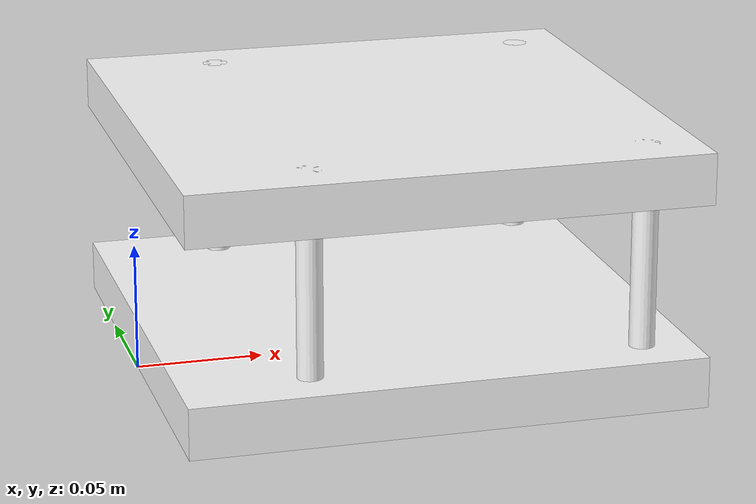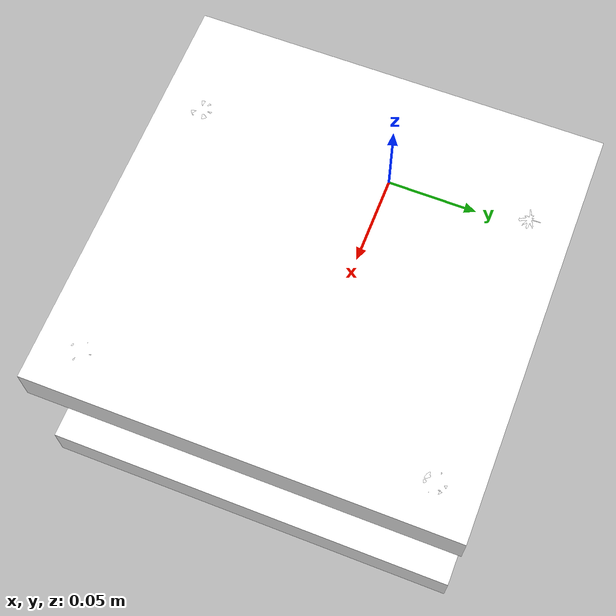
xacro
<?xml version="1.0"?>
<robot xmlns:xacro="https://www.ros.org/wiki/xacro" name="robot">

    <xacro:include filename="inertial.xacro"/>

    <link name="chassis">
       <visual>
          <origin xyz="0.1 0.0 0.01" rpy="0.0 0.0 0.0"/>
          <geometry>
            <box size="0.20 0.20 0.02"/>
          </geometry>
          <material name="white">
            <color rgba="1 1 1 1" />
          </material>

       </visual>
       <collision>
          <origin xyz="0.1 0.0 0.01" rpy="0.0 0.0 0.0"/>
          <geometry>
            <box size="0.20 0.20 0.02"/>
          </geometry>

       </collision>
       <xacro:inertial_box mass="0.25" x="0.20" y="0.20" z="0.02">
            <origin xyz="0.1 0.0 0.01" rpy="0 0 0"/>
       </xacro:inertial_box>
    </link>

    <gazebo reference="chassis">
        <material>Gazebo/white</material>
    </gazebo>

    <!--4 poles-->

    <!--pole1-->
    <link name="pole1">
        <visual>
            <origin xyz="0 0 0.05"/>

            <geometry>
                <cylinder radius="0.005" length="0.1"/>
            </geometry>
            <material name="white">
                <color rgba="1 1 1 1" />
            </material>
        </visual>
        <collision>
            <origin xyz="0 0 0.05"/>

            <geometry>
                <cylinder radius="0.005" length="0.1"/>
            </geometry>
        </collision>
        <xacro:inertial_cylinder mass="0.1" length="0.1" radius="0.005">
            <origin xyz="0 0 0.05" rpy="0 0 0"/>
        </xacro:inertial_cylinder>
    </link>

    <joint name="chassis_to_pole1" type="fixed">
        <parent link="chassis"/>
        <child link="pole1"/>
        <origin xyz="0.05 0.08 0.0" rpy="0.0 0.0 0.0"/>

    </joint>

    <link name="pole2">
        <visual>
            <origin xyz="0 0 0.05"/>

            <geometry>
                <cylinder radius="0.005" length="0.1"/>
            </geometry>
            <material name="white">
                <color rgba="1 1 1 1" />
            </material>
        </visual>
        <collision>
            <origin xyz="0 0 0.05"/>

            <geometry>
                <cylinder radius="0.005" length="0.1"/>
            </geometry>
        </collision>
        <xacro:inertial_cylinder mass="0.1" length="0.1" radius="0.005">
            <origin xyz="0 0 0.05" rpy="0 0 0"/>
        </xacro:inertial_cylinder>
    </link>

    <joint name="chassis_to_pole2" type="fixed">
        <parent link="chassis"/>
        <child link="pole2"/>
        <origin xyz="0.05 -0.08 0.0" rpy="0.0 0.0 0.0"/>

    </joint>

    <link name="pole3">
        <visual>
            <origin xyz="0 0 0.05"/>

            <geometry>
                <cylinder radius="0.005" length="0.1"/>
            </geometry>
            <material name="white">
                <color rgba="1 1 1 1" />
            </material>
        </visual>
        <collision>
            <origin xyz="0 0 0.05"/>

            <geometry>
                <cylinder radius="0.005" length="0.1"/>
            </geometry>
        </collision>
        <xacro:inertial_cylinder mass="0.1" length="0.1" radius="0.005">
            <origin xyz="0 0 0.05" rpy="0 0 0"/>
        </xacro:inertial_cylinder>
    </link>

    <joint name="chassis_to_pole3" type="fixed">
        <parent link="chassis"/>
        <child link="pole3"/>
        <origin xyz="0.18 -0.08 0.0" rpy="0.0 0.0 0.0"/>

    </joint>

    <link name="pole4">
        <visual>
            <origin xyz="0 0 0.05"/>

            <geometry>
                <cylinder radius="0.005" length="0.1"/>
            </geometry>
            <material name="white">
                <color rgba="1 1 1 1" />
            </material>
        </visual>
        <collision>
            <origin xyz="0 0 0.05"/>

            <geometry>
                <cylinder radius="0.005" length="0.1"/>
            </geometry>
        </collision>
        <xacro:inertial_cylinder mass="0.1" length="0.1" radius="0.005">
            <origin xyz="0 0 0.05" rpy="0 0 0"/>
        </xacro:inertial_cylinder>
    </link>

    <joint name="chassis_to_pole4" type="fixed">
        <parent link="chassis"/>
        <child link="pole4"/>
        <origin xyz="0.18 0.08 0.0" rpy="0.0 0.0 0.0"/>

    </joint>

    <!--1st floor chassis-->

    <link name="chassis1">
       <visual>
          <origin xyz="0.1 0.0 0.01" rpy="0.0 0.0 0.0"/>
          <geometry>
            <box size="0.20 0.20 0.02"/>
          </geometry>
          <material name="white">
            <color rgba="1 1 1 1" />
          </material>

       </visual>
       <collision>
          <origin xyz="0.1 0.0 0.01" rpy="0.0 0.0 0.0"/>
          <geometry>
            <box size="0.20 0.20 0.02"/>
          </geometry>

       </collision>
       <xacro:inertial_box mass="0.25" x="0.20" y="0.20" z="0.02">
            <origin xyz="0.1 0.0 0.01" rpy="0 0 0"/>
       </xacro:inertial_box>

    </link>

    <joint name="chassis_to_chassis1" type="fixed">
        <parent link="chassis"/>
        <child link="chassis1"/>
        <origin xyz="0.0 0.0 0.08" rpy="0.0 0.0 0.0"/>

    </joint>

</robot>
